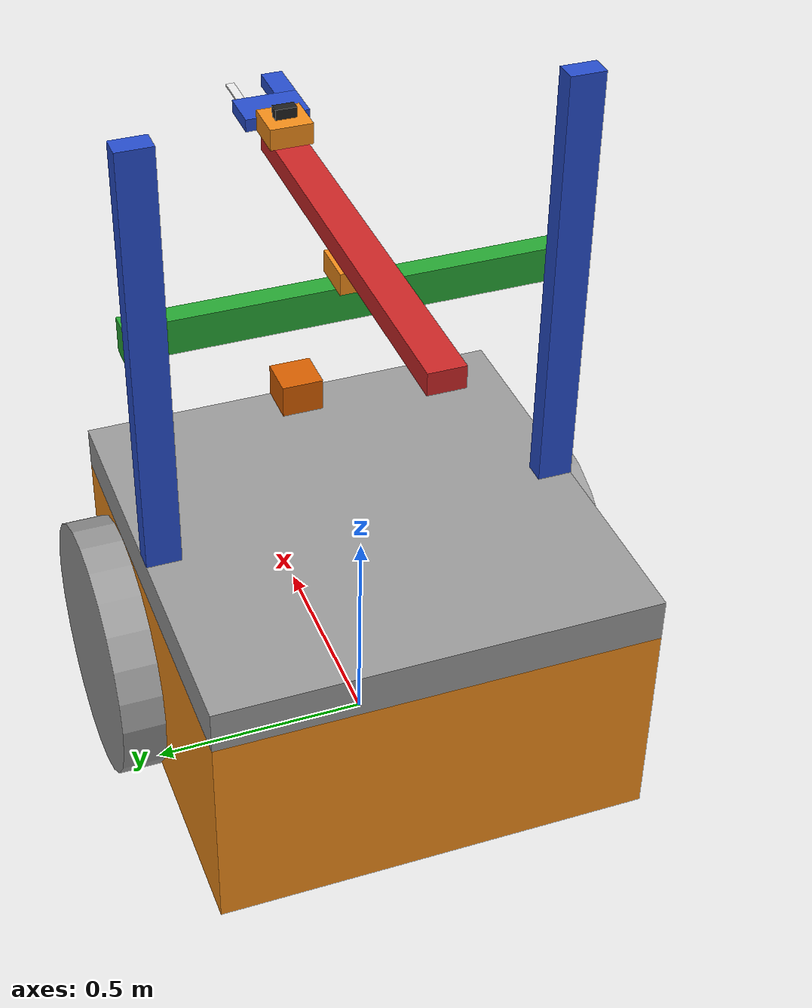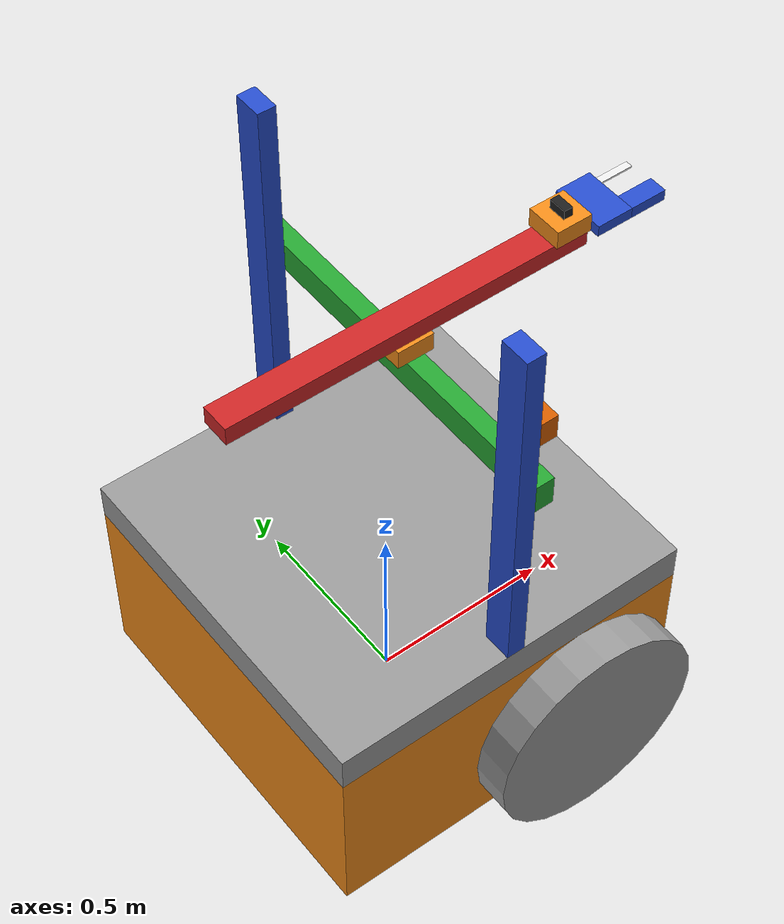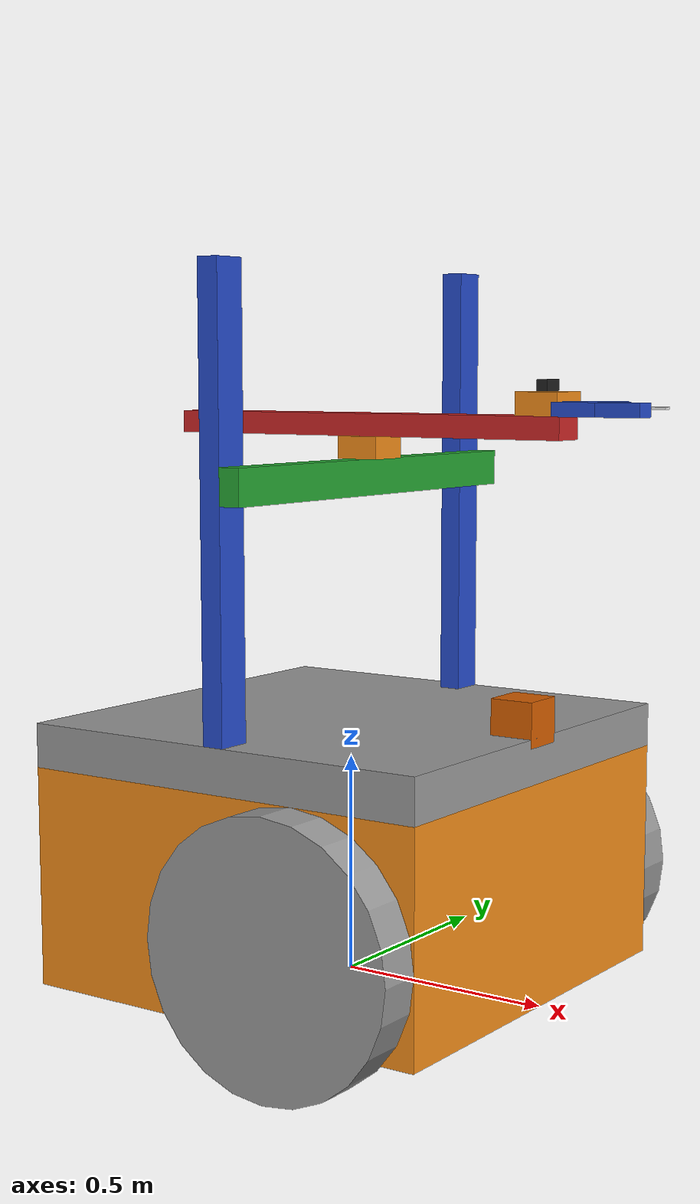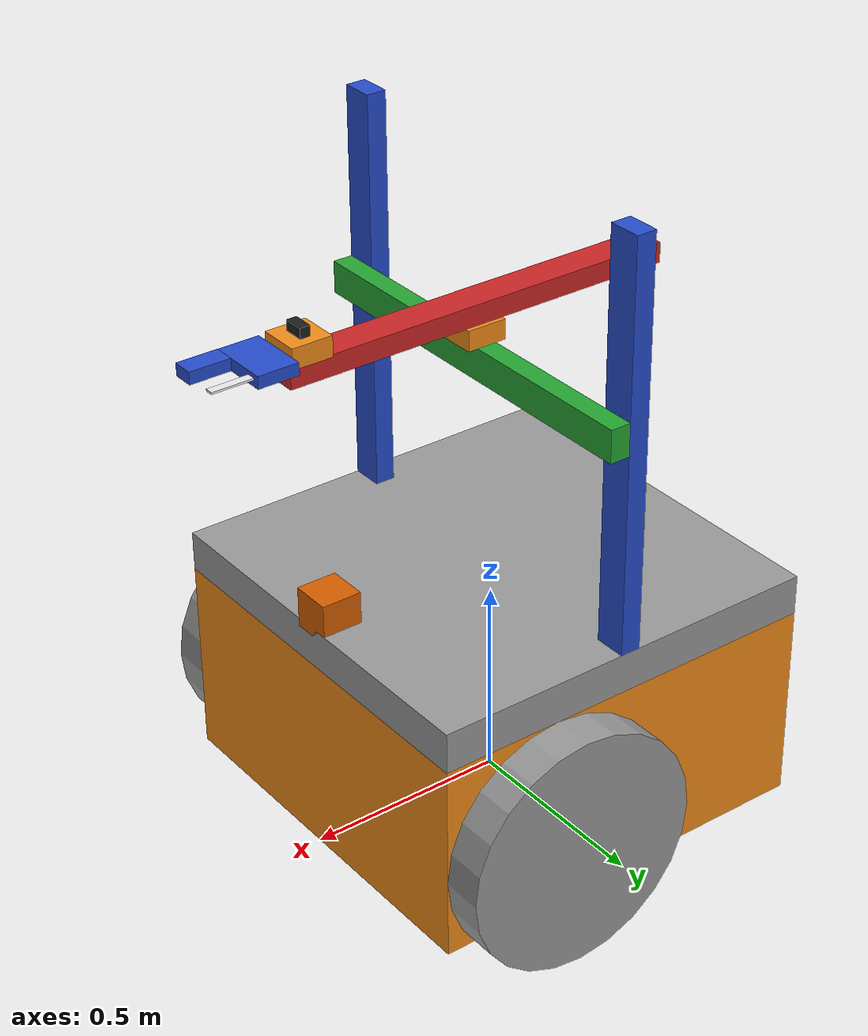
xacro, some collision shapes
<?xml version="1.0"?>
<robot name="harvestbot" xmlns:xacro="http://www.ros.org/wiki/xacro">

  <xacro:include filename="$(find harvestbot_description)/urdf/materials.xacro" />
  <xacro:include filename="$(find harvestbot_description)/urdf/harvestbot_common.xacro" />
  <xacro:include filename="$(find harvestbot_description)/urdf/harvestbot.gazebo" />
  <xacro:include filename="$(find harvestbot_description)/urdf/harvestbot_vehicle.urdf.xacro" />
  <xacro:include filename="$(find harvestbot_description)/urdf/harvestbot_xyzarm.urdf.xacro" />
  <xacro:include filename="$(find harvestbot_description)/urdf/harvestbot_gripper.urdf.xacro" />

  <joint name="joint_vehicle_to_arm" type="fixed">
      <parent link="vehicle_body"/>
      <child link="arm_base"/>
      <origin xyz="0 0 ${body_h}" rpy="0 0 0"/>
  </joint>

  <joint name="joint_gripper_rotate" type="revolute">
      <parent link="gripper_holder"/>
      <child link="gripper_body"/>
      <origin xyz="${gripper_size} 0 0" rpy="0 0 0"/>
      <axis xyz="1 0 0"/>
      <limit lower="${-PI}" upper="${PI}" effort="100" velocity="10" />
  </joint>

  <!-- ======================transitions=============================-->
    <transmission name="gripper_rotate_tran">
        <type>transmission_interface/SimpleTransmission</type>
        <joint name="joint_gripper_rotate">
        <hardwareInterface>hardware_interface/EffortJointInterface</hardwareInterface>
        </joint>
        <actuator name="motor_gripper_rotate">
        <hardwareInterface>hardware_interface/EffortJointInterface</hardwareInterface>
        <mechanicalReduction>1</mechanicalReduction>
        </actuator>
    </transmission>
</robot>

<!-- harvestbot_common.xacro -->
<robot name="harvestbot" xmlns:xacro="http://www.ros.org/wiki/xacro">
    <xacro:property name="PI" value="3.1415926"/>
    <xacro:macro name="visualAsCollision" params="*origin *geometry *material">
        <collision>
            <xacro:insert_block name="origin" />
            <xacro:insert_block name="geometry" />
        </collision>

        <visual>
            <xacro:insert_block name="origin" />
            <xacro:insert_block name="geometry" />
            <xacro:insert_block name="material" />
        </visual>
    </xacro:macro>

    <xacro:macro name="box_link" params="name depth width length mass material">
        <link name="${name}">
            <xacro:visualAsCollision>
                <origin xyz="0 0 ${length/2}" rpy="0 0 0"/>
                <geometry>
                    <box size="${depth} ${width} ${length}"/>
                </geometry>
                <material name="${material}"/>
            </xacro:visualAsCollision>

            <inertial>
                <origin xyz="0 0 ${length/2}" rpy="0 0 0"/>
                <mass value="${mass}"/>
                <inertia
                ixx="${mass / 12.0 * (width*width + length*length)}" ixy="0.0" ixz="0.0"
                iyy="${mass / 12.0 * (length*length + depth*depth)}" iyz="0.0"
                izz="${mass / 12.0 * (depth*depth + width*width)}"/>
            </inertial>
        </link>
    </xacro:macro>
</robot>

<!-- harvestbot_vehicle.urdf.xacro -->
<robot name="harvestbot" xmlns:xacro="http://www.ros.org/wiki/xacro">

    <xacro:property name="body_w" value="1"/>
    <xacro:property name="body_h" value="0.5"/>
    <xacro:property name="body_d" value="1"/>
    <xacro:property name="body_mass" value="20"/>
    <xacro:property name="back_wheel_r" value="0.1"/>
    <xacro:property name="back_wheel_offset" value="-0.3"/>
    <xacro:property name="back_wheel_mass" value="0.1"/>
    <xacro:property name="wheel_r" value="0.3"/>
    <xacro:property name="wheel_h" value="0.1"/>
    <xacro:property name="wheel_mass" value="1"/>
    <xacro:property name="wheel_offset" value="0.2"/>

    <!-- ==================body======================= -->
    <xacro:box_link name="vehicle_body" depth="${body_d}" width="${body_w}" length="${body_h}" mass="${body_mass}" material="orange"/>

    <!-- ==================back wheel======================= -->
    <link name="back_wheel">
        <xacro:visualAsCollision>
            <origin xyz="${back_wheel_offset} 0 0" rpy="0 0 0"/>
            <geometry>
                <sphere radius="${back_wheel_r}"/>
            </geometry>
            <material name="grey"/>
        </xacro:visualAsCollision>

        <inertial>
            <origin xyz="0 0 0" rpy="0 0 0"/>
            <mass value="${back_wheel_mass}"/>
            <inertia
            ixx="${back_wheel_mass*2/5.0*back_wheel_r*back_wheel_r}" ixy="0.0" ixz="0.0"
            iyy="${back_wheel_mass*2/5.0*back_wheel_r*back_wheel_r}" iyz="0.0"
            izz="${back_wheel_mass*2/5.0*back_wheel_r*back_wheel_r}"/>
        </inertial>
    </link>

    <joint name="joint_back_wheel" type="fixed">
        <parent link="vehicle_body"/>
        <child link="back_wheel"/>
        <origin xyz="0 0 0" rpy="0 0 0"/>
    </joint>

    <!-- ==================wheel======================= -->
    <xacro:macro name="wheel" params="suffix reflect">
        <link name="${suffix}_wheel">
            <xacro:visualAsCollision>
                <origin xyz="0 0 0" rpy="${PI*0.5} 0 0"/>
                <geometry>
                    <cylinder radius="${wheel_r}" length="${wheel_h}"/>
                </geometry>
                <material name="grey"/>
            </xacro:visualAsCollision>

            <inertial>
                <origin xyz="0 0 0" rpy="${PI*0.5} 0 0"/>
                <mass value="${wheel_mass}"/>
                <inertia
                ixx="${wheel_mass/12.0*(3*wheel_r*wheel_r+wheel_h*wheel_h)}" ixy="0.0" ixz="0.0"
                iyy="${wheel_mass/12.0*(3*wheel_r*wheel_r+wheel_h*wheel_h)}" iyz="0.0"
                izz="${wheel_mass/12.0*(3*wheel_r*wheel_r+wheel_h*wheel_h)}"/>
            </inertial>
        </link>

        <joint name="joint_${suffix}_wheel" type="continuous">
            <parent link="vehicle_body"/>
            <child link="${suffix}_wheel"/>
            <axis xyz="0 1 0"/>
            <origin xyz="${wheel_offset} ${reflect*(body_w+wheel_h)*0.5} ${wheel_r-back_wheel_r}" rpy="0 0 0"/>
        </joint>

    </xacro:macro>

    <xacro:wheel suffix="left" reflect="1"/>
    <xacro:wheel suffix="right" reflect="-1"/>

    <!-- ======================transitions=============================-->
    <transmission name="left_wheel_tran">
        <type>transmission_interface/SimpleTransmission</type>
        <joint name="joint_left_wheel">
        <hardwareInterface>hardware_interface/EffortJointInterface</hardwareInterface>
        </joint>
        <actuator name="motor_left">
        <hardwareInterface>hardware_interface/EffortJointInterface</hardwareInterface>
        <mechanicalReduction>1</mechanicalReduction>
        </actuator>
    </transmission>

    <transmission name="right_wheel_tran">
        <type>transmission_interface/SimpleTransmission</type>
        <joint name="joint_right_wheel">
        <hardwareInterface>hardware_interface/EffortJointInterface</hardwareInterface>
        </joint>
        <actuator name="motor_right">
        <hardwareInterface>hardware_interface/EffortJointInterface</hardwareInterface>
        <mechanicalReduction>1</mechanicalReduction>
        </actuator>
    </transmission>
</robot>

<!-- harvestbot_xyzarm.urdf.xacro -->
<robot name="harvestbot" xmlns:xacro="http://www.ros.org/wiki/xacro">
    <xacro:property name="base_w" value="1"/>
    <xacro:property name="base_h" value="0.1"/>
    <xacro:property name="base_d" value="1"/>
    <xacro:property name="base_mass" value="1"/>
    <xacro:property name="arm_w" value="0.08"/>
    <xacro:property name="arm_d" value="0.05"/>
    <xacro:property name="arm_len_x" value="1"/>
    <xacro:property name="arm_len_y" value="1"/>
    <xacro:property name="arm_len_z" value="1"/>
    <xacro:property name="arm_mass_x" value="1"/>
    <xacro:property name="arm_mass_y" value="1"/>
    <xacro:property name="arm_mass_z" value="1"/>
    <xacro:property name="holder_size" value="0.1"/>
    <xacro:property name="holder_mass" value="0.2"/>
    <xacro:property name="camera_size" value="0.05"/>
    <xacro:property name="camera_mass" value="0.1"/>
    <!-- ==================base======================= -->
    <xacro:box_link name="arm_base" depth="${base_d}" width="${base_w}" length="${base_h}" mass="${base_mass}" material="grey"/>

    <!-- ==================arm======================= -->
    <xacro:box_link name="arm_z_left" depth="${arm_d}" width="${arm_w}" length="${arm_len_z}" mass="${arm_mass_z}" material="blue"/>

    <joint name="joint_arm_z_left" type="fixed">
        <parent link="arm_base"/>
        <child link="arm_z_left"/>
        <origin xyz="0 ${(base_w-arm_w)/2} ${base_h}" rpy="0 0 0"/>
    </joint>

    <xacro:box_link name="arm_z_right" depth="${arm_d}" width="${arm_w}" length="${arm_len_z}" mass="${arm_mass_z}" material="blue"/>

    <joint name="joint_arm_z_right" type="fixed">
        <parent link="arm_base"/>
        <child link="arm_z_right"/>
        <origin xyz="0 ${-(base_w-arm_w)/2} ${base_h}" rpy="0 0 0"/>
    </joint>

    <xacro:box_link name="arm_y" depth="${arm_d}" width="${arm_len_y}" length="${arm_w}" mass="${arm_mass_y}" material="green"/>

    <joint name="joint_slide_z" type="prismatic">
        <parent link="arm_z_left"/>
        <child link="arm_y"/>
        <origin xyz="${arm_d} ${-(arm_len_y-arm_w)/2} ${arm_len_z/2}" rpy="0 0 0"/>
        <axis xyz="0 0 1"/>
        <limit lower="${-arm_len_z/2+arm_w}" upper="${arm_len_z/2-arm_w}" effort="100" velocity="10" />
    </joint>

    <xacro:box_link name="arm_x_holder" depth="${holder_size}" width="${holder_size}" length="${holder_size/2}" mass="${holder_mass}" material="orange"/>

    <joint name="joint_slide_y" type="prismatic">
        <parent link="arm_y"/>
        <child link="arm_x_holder"/>
        <origin xyz="0 0 ${arm_w}" rpy="0 0 0"/>
        <axis xyz="0 1 0"/>
        <limit lower="${-arm_len_y/2+arm_w*1.5}" upper="${arm_len_y/2-arm_w*1.5}" effort="100" velocity="10" />
    </joint>

    <xacro:box_link name="arm_x" depth="${arm_len_x}" width="${arm_w}" length="${arm_d}" mass="${arm_mass_x}" material="red"/>

    <joint name="joint_slide_x" type="prismatic">
        <parent link="arm_x_holder"/>
        <child link="arm_x"/>
        <origin xyz="0 0 ${arm_d}" rpy="0 0 0"/>
        <axis xyz="1 0 0"/>
        <limit lower="${-arm_len_x/2+holder_size}" upper="${arm_len_x/2-holder_size}" effort="100" velocity="10" />
    </joint>

    <xacro:box_link name="gripper_holder" depth="${holder_size}" width="${holder_size}" length="${holder_size/2}" mass="${holder_mass}" material="orange"/>

    <joint name="joint_gripper_holder" type="fixed">
        <parent link="arm_x"/>
        <child link="gripper_holder"/>
        <origin xyz="${(arm_len_x-holder_size)/2} 0 ${holder_size/2}" rpy="0 0 0"/>
    </joint>

    <!-- ======================sensors=============================-->
    <xacro:box_link name="camera_link" depth="${camera_size/2}" width="${camera_size}" length="${camera_size/2}" mass="${camera_mass}" material="black"/>

    <joint name="joint_camera_link" type="fixed">
        <parent link="gripper_holder"/>
        <child link="camera_link"/>
        <origin xyz="0 0 ${holder_size/2}" rpy="0 0 0"/>
    </joint>

    <!-- generate an optical frame http://www.ros.org/reps/rep-0103.html#suffix-frames
      so that ros and opencv can operate on the camera frame correctly -->
    <joint name="camera_optical_joint" type="fixed">
        <!-- these values have to be these values otherwise the gazebo camera image
            won't be aligned properly with the frame it is supposedly originating from -->
        <origin xyz="0 0 0" rpy="${-pi/2} 0 ${-pi/2}"/>
        <parent link="camera_link"/>
        <child link="camera_link_optical"/>
    </joint>

    <link name="camera_link_optical">
    </link>

    <link name="hokuyo_link">
        <collision>
            <origin xyz="0 0 0" rpy="0 0 0"/>
            <geometry>
            <box size="0.1 0.1 0.1"/>
            </geometry>
        </collision>

        <visual>
            <origin xyz="0 0 0" rpy="0 0 0"/>
            <geometry>
                <mesh filename="package://harvestbot_description/meshes/hokuyo.dae"/>
            </geometry>
        </visual>

        <inertial>
        <mass value="1e-5" />
        <origin xyz="0 0 0" rpy="0 0 0"/>
        <inertia ixx="1e-6" ixy="0" ixz="0" iyy="1e-6" iyz="0" izz="1e-6" />
        </inertial>
    </link>

    <joint name="joint_hokuyo_link" type="fixed">
        <parent link="arm_base"/>
        <child link="hokuyo_link"/>
        <origin xyz="${(base_d-0.1)/2} 0 ${base_h+0.03}" rpy="0 0 0"/>
    </joint>

    <!-- ======================transitions=============================-->
    <transmission name="slide_z_tran">
        <type>transmission_interface/SimpleTransmission</type>
        <joint name="joint_slide_z">
        <hardwareInterface>hardware_interface/EffortJointInterface</hardwareInterface>
        </joint>
        <actuator name="motor_slide_z">
        <hardwareInterface>hardware_interface/EffortJointInterface</hardwareInterface>
        <mechanicalReduction>1</mechanicalReduction>
        </actuator>
    </transmission>

    <transmission name="slide_y_tran">
        <type>transmission_interface/SimpleTransmission</type>
        <joint name="joint_slide_y">
        <hardwareInterface>hardware_interface/EffortJointInterface</hardwareInterface>
        </joint>
        <actuator name="motor_slide_y">
        <hardwareInterface>hardware_interface/EffortJointInterface</hardwareInterface>
        <mechanicalReduction>1</mechanicalReduction>
        </actuator>
    </transmission>

    <transmission name="slide_x_tran">
        <type>transmission_interface/SimpleTransmission</type>
        <joint name="joint_slide_x">
        <hardwareInterface>hardware_interface/EffortJointInterface</hardwareInterface>
        </joint>
        <actuator name="motor_slide_x">
        <hardwareInterface>hardware_interface/EffortJointInterface</hardwareInterface>
        <mechanicalReduction>1</mechanicalReduction>
        </actuator>
    </transmission>
</robot>

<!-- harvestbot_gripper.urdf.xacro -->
<robot name="harvestbot" xmlns:xacro="http://www.ros.org/wiki/xacro">
    <xacro:property name="gripper_size" value="0.1"/>
    <xacro:property name="gripper_mass" value="0.2"/>

    <xacro:box_link name="gripper_body" depth="${gripper_size}" width="${gripper_size*1.5}" length="${gripper_size*0.3}" mass="${gripper_mass}" material="blue"/>

    <xacro:box_link name="gripper_finger" depth="${gripper_size}" width="${gripper_size*0.5}" length="${gripper_size*0.3}" mass="${gripper_mass*0.2}" material="blue"/>

    <joint name="joint_gripper_finger" type="fixed">
        <parent link="gripper_body"/>
        <child link="gripper_finger"/>
        <origin xyz="${gripper_size} ${-gripper_size*0.5} 0" rpy="0 0 0"/>
    </joint>

    <xacro:box_link name="gripper_knife" depth="${gripper_size}" width="${gripper_size*0.2}" length="${gripper_size*0.05}" mass="${gripper_mass*0.5}" material="white"/>

    <joint name="joint_knife" type="prismatic">
        <parent link="gripper_body"/>
        <child link="gripper_knife"/>
        <origin xyz="${gripper_size} ${gripper_size*0.5} ${gripper_size*0.15}" rpy="0 0 0"/>
        <axis xyz="0 1 0"/>
        <limit lower="${-gripper_size*0.65}" upper="0" effort="100" velocity="10" />
    </joint>

    <!-- ======================transitions=============================-->
    <transmission name="knife_tran">
        <type>transmission_interface/SimpleTransmission</type>
        <joint name="joint_knife">
        <hardwareInterface>hardware_interface/EffortJointInterface</hardwareInterface>
        </joint>
        <actuator name="motor_knife">
        <hardwareInterface>hardware_interface/EffortJointInterface</hardwareInterface>
        <mechanicalReduction>1</mechanicalReduction>
        </actuator>
    </transmission>
</robot>
